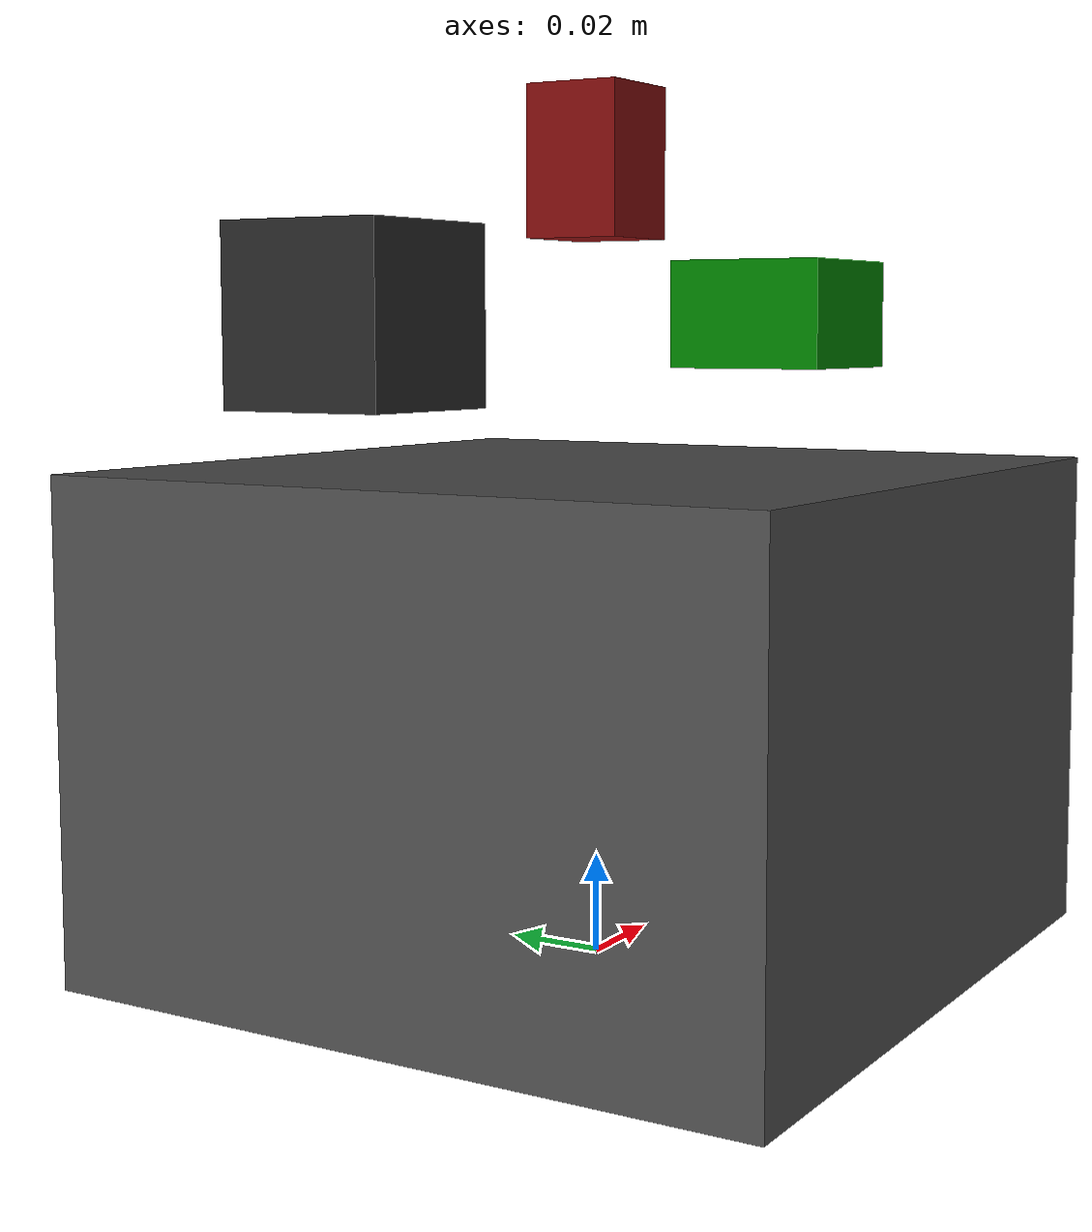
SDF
<?xml version="1.0" ?>
<sdf version="1.9">
  <model name="sensor_array">
    <static>true</static>

    <!-- Mounting Bracket                                            -->
    <link name="bracket_link">
      <pose>0 0 0.05 0 0 0</pose>
      <inertial>
        <mass>2.0</mass>
        <inertia>
          <ixx>0.007</ixx>
          <ixy>0</ixy>
          <ixz>0</ixz>
          <iyy>0.007</iyy>
          <iyz>0</iyz>
          <izz>0.007</izz>
        </inertia>
      </inertial>
      <collision name="bracket_collision">
        <geometry>
          <box>
            <size>0.15 0.15 0.10</size>
          </box>
        </geometry>
      </collision>
      <visual name="bracket_visual">
        <geometry>
          <box>
            <size>0.15 0.15 0.10</size>
          </box>
        </geometry>
        <material>
          <ambient>0.2 0.2 0.2 1.0</ambient>
          <diffuse>0.3 0.3 0.3 1.0</diffuse>
          <specular>0.4 0.4 0.4 1.0</specular>
        </material>
      </visual>
    </link>

    <!-- Camera Sensor                                              -->
    <link name="camera_link">
      <pose>0 0.06 0.13 0 0 0</pose>
      <inertial>
        <mass>0.3</mass>
        <inertia>
          <ixx>0.0002</ixx>
          <ixy>0</ixy>
          <ixz>0</ixz>
          <iyy>0.0002</iyy>
          <iyz>0</iyz>
          <izz>0.0001</izz>
        </inertia>
      </inertial>
      <collision name="camera_collision">
        <geometry>
          <box>
            <size>0.04 0.04 0.04</size>
          </box>
        </geometry>
      </collision>
      <visual name="camera_visual">
        <geometry>
          <box>
            <size>0.04 0.04 0.04</size>
          </box>
        </geometry>
        <material>
          <ambient>0.1 0.1 0.1 1.0</ambient>
          <diffuse>0.15 0.15 0.15 1.0</diffuse>
          <specular>0.3 0.3 0.3 1.0</specular>
        </material>
      </visual>
      <sensor name="camera" type="camera">
        <always_on>true</always_on>
        <update_rate>30</update_rate>
        <camera>
          <horizontal_fov>1.0472</horizontal_fov>  <!-- 60 degrees -->
          <image>
            <width>640</width>
            <height>480</height>
            <format>R8G8B8</format>
          </image>
          <clip>
            <near>0.05</near>
            <far>50.0</far>
          </clip>
          <noise>
            <type>gaussian</type>
            <mean>0.0</mean>
            <stddev>0.007</stddev>
          </noise>
        </camera>
        <topic>sensor_array/camera</topic>
      </sensor>
    </link>

    <joint name="camera_joint" type="fixed">
      <parent>bracket_link</parent>
      <child>camera_link</child>
    </joint>

    <!-- IMU Sensor                                                 -->
    <link name="imu_link">
      <pose>0 -0.04 0.13 0 0 0</pose>
      <inertial>
        <mass>0.1</mass>
        <inertia>
          <ixx>0.00003</ixx>
          <ixy>0</ixy>
          <ixz>0</ixz>
          <iyy>0.00003</iyy>
          <iyz>0</iyz>
          <izz>0.00003</izz>
        </inertia>
      </inertial>
      <collision name="imu_collision">
        <geometry>
          <box>
            <size>0.03 0.03 0.02</size>
          </box>
        </geometry>
      </collision>
      <visual name="imu_visual">
        <geometry>
          <box>
            <size>0.03 0.03 0.02</size>
          </box>
        </geometry>
        <material>
          <ambient>0.0 0.3 0.0 1.0</ambient>
          <diffuse>0.0 0.5 0.0 1.0</diffuse>
          <specular>0.2 0.2 0.2 1.0</specular>
        </material>
      </visual>
      <sensor name="imu" type="imu">
        <always_on>true</always_on>
        <update_rate>200</update_rate>
        <imu>
          <angular_velocity>
            <x>
              <noise type="gaussian">
                <mean>0.0</mean>
                <stddev>0.0002</stddev>
              </noise>
            </x>
            <y>
              <noise type="gaussian">
                <mean>0.0</mean>
                <stddev>0.0002</stddev>
              </noise>
            </y>
            <z>
              <noise type="gaussian">
                <mean>0.0</mean>
                <stddev>0.0002</stddev>
              </noise>
            </z>
          </angular_velocity>
          <linear_acceleration>
            <x>
              <noise type="gaussian">
                <mean>0.0</mean>
                <stddev>0.017</stddev>
              </noise>
            </x>
            <y>
              <noise type="gaussian">
                <mean>0.0</mean>
                <stddev>0.017</stddev>
              </noise>
            </y>
            <z>
              <noise type="gaussian">
                <mean>0.0</mean>
                <stddev>0.017</stddev>
              </noise>
            </z>
          </linear_acceleration>
        </imu>
        <topic>sensor_array/imu</topic>
      </sensor>
    </link>

    <joint name="imu_joint" type="fixed">
      <parent>bracket_link</parent>
      <child>imu_link</child>
    </joint>

    <!-- Microphone Placeholder (box representing mic housing)      -->
    <link name="microphone_link">
      <pose>0 0 0.16 0 0 0</pose>
      <inertial>
        <mass>0.05</mass>
        <inertia>
          <ixx>0.000005</ixx>
          <ixy>0</ixy>
          <ixz>0</ixz>
          <iyy>0.000005</iyy>
          <iyz>0</iyz>
          <izz>0.000005</izz>
        </inertia>
      </inertial>
      <collision name="microphone_collision">
        <geometry>
          <box>
            <size>0.02 0.02 0.03</size>
          </box>
        </geometry>
      </collision>
      <visual name="microphone_visual">
        <geometry>
          <box>
            <size>0.02 0.02 0.03</size>
          </box>
        </geometry>
        <material>
          <ambient>0.3 0.0 0.0 1.0</ambient>
          <diffuse>0.5 0.05 0.05 1.0</diffuse>
          <specular>0.2 0.2 0.2 1.0</specular>
        </material>
      </visual>
    </link>

    <joint name="microphone_joint" type="fixed">
      <parent>bracket_link</parent>
      <child>microphone_link</child>
    </joint>

  </model>
</sdf>
